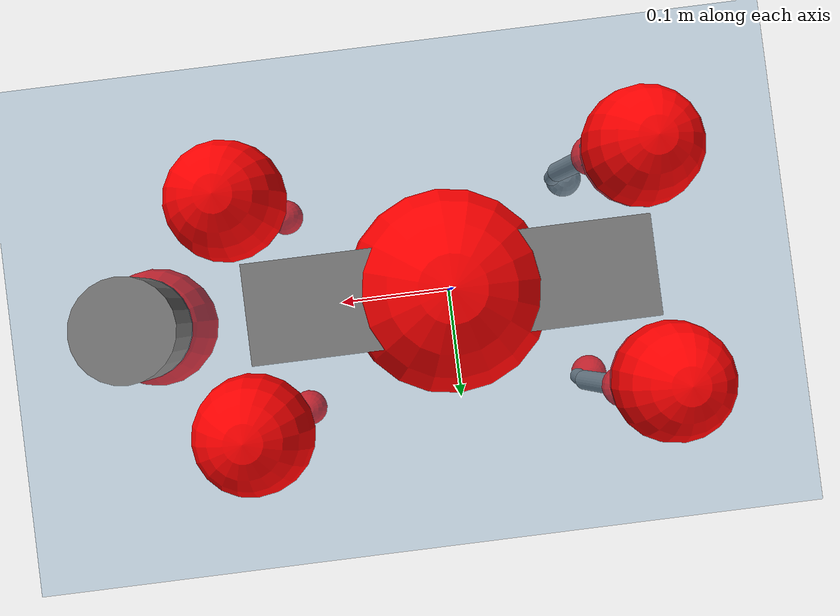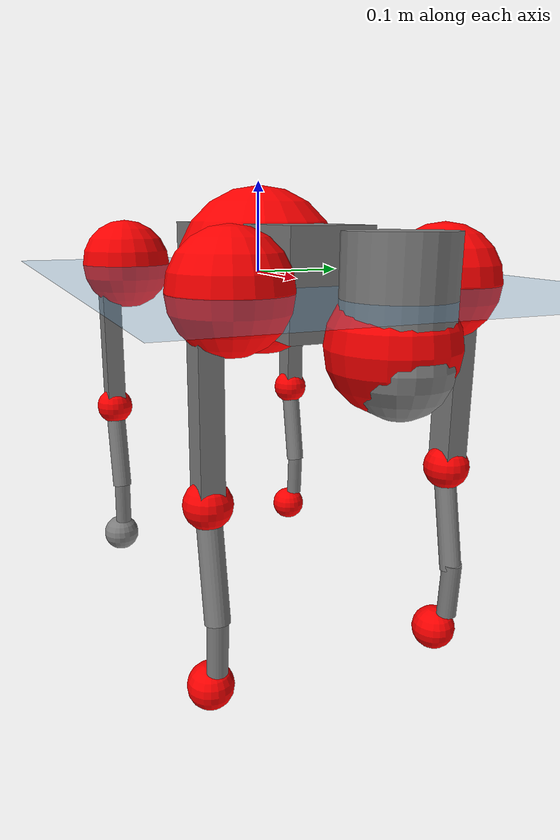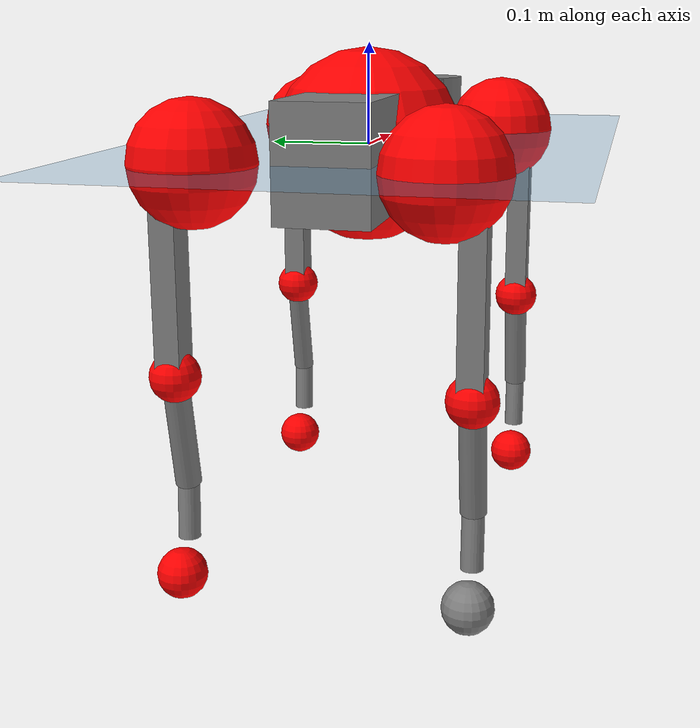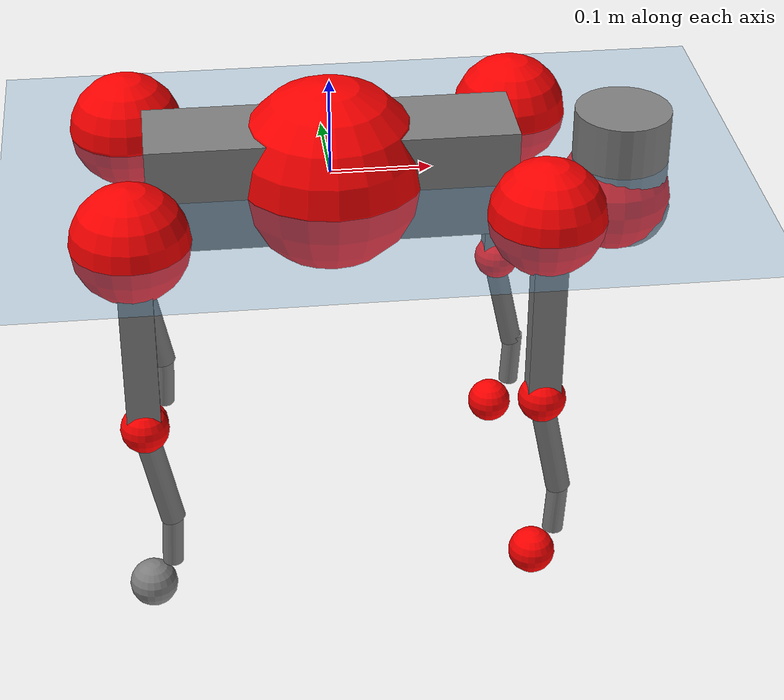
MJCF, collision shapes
<mujoco model="go2">
  <compiler angle="radian" assetdir="assets" balanceinertia="true" inertiafromgeom="false"/>

  <option timestep="0.005" density="1.2" viscosity="2e-05"/>

  <size nkey="1"/>

  <visual>
    <quality shadowsize="8192"/>
    <map shadowclip="0.5"/>
  </visual>

  <default>
    <default class="/">
      <geom contype="0" conaffinity="0" group="1" solref="-1000 -80"/>
      <site size="0.01 0.005 0.005" group="5"/>
      <general forcelimited="true" biastype="affine" gainprm="20" biasprm="0 -20 -0.5"/>
      <default class="go2">
        <joint armature="0.01" damping="0.01" frictionloss="0.2"/>
        <geom condim="1" margin="0.001"/>
        <default class="visual">
          <geom type="mesh" group="2"/>
        </default>
        <default class="collision">
          <geom group="3"/>
          <default class="foot">
            <geom size="0.022 0 0" condim="6" priority="1" friction="0.8 0.02 0.01" solimp="0.015 1 0.022"/>
          </default>
        </default>
        <default class="reward_collision_sphere">
          <geom group="5" rgba="1 0 0 1"/>
        </default>
      </default>
    </default>
  </default>

  <asset>
    <texture type="skybox" colorspace="auto" name="//unnamed_texture_0" builtin="gradient" rgb1="0.95 0.95 0.95" rgb2="0.95 0.95 0.95" width="100" height="600"/>
    <texture type="2d" colorspace="auto" name="texplane" builtin="checker" rgb1="0.345 0.575 0.748" rgb2="0.345 0.575 0.748" markrgb="1 1 1" width="512" height="512"/>
    <material name="MatPlane" class="/" texture="texplane" texuniform="true" texrepeat="2 2" specular="0.9"/>
    <material name="metal" class="/" rgba="0.9 0.95 0.95 1"/>
    <material name="black" class="/" rgba="0 0 0 1"/>
    <material name="white" class="/"/>
    <material name="gray" class="/" rgba="0.671705 0.692426 0.77427 1"/>
    <mesh name="base_0" class="/" file="base_0.obj"/>
    <mesh name="base_1" class="/" file="base_1.obj"/>
    <mesh name="base_2" class="/" file="base_2.obj"/>
    <mesh name="base_3" class="/" file="base_3.obj"/>
    <mesh name="base_4" class="/" file="base_4.obj"/>
    <mesh name="hip_0" class="/" file="hip_0.obj"/>
    <mesh name="hip_1" class="/" file="hip_1.obj"/>
    <mesh name="thigh_0" class="/" file="thigh_0.obj"/>
    <mesh name="thigh_1" class="/" file="thigh_1.obj"/>
    <mesh name="thigh_mirror_0" class="/" file="thigh_mirror_0.obj"/>
    <mesh name="thigh_mirror_1" class="/" file="thigh_mirror_1.obj"/>
    <mesh name="calf_0" class="/" file="calf_0.obj"/>
    <mesh name="calf_1" class="/" file="calf_1.obj"/>
    <mesh name="calf_mirror_0" class="/" file="calf_mirror_0.obj"/>
    <mesh name="calf_mirror_1" class="/" file="calf_mirror_1.obj"/>
    <mesh name="foot" class="/" file="foot.obj"/>
  </asset>

  <worldbody>
    <geom name="floor" class="/" size="100 100 0.125" type="plane" group="0" material="MatPlane"/>
    <light name="toplight_shadow" class="/" pos="0 0 5" dir="0.0990148 0.0990148 -0.990148" type="directional" ambient="0.04 0.04 0.04" diffuse="0.55 0.55 0.55" specular="0.12 0.12 0.12"/>
    <light name="toplight_fill" class="/" pos="0 0 5" dir="0.0990148 0.0990148 -0.990148" type="directional" castshadow="false" ambient="0.04 0.04 0.04" diffuse="0.3 0.3 0.3" specular="0.08 0.08 0.08"/>
    <body name="trunk" childclass="go2" pos="-0.000181211 0.000851697 -8.25812e-05" quat="1 -0.000420583 -2.43501e-05 -1.09938e-05">
      <inertial pos="0.0223051 -0.000805849 -0.00564442" quat="-0.000986847 0.714331 0.00251271 0.699802" mass="6.04706" diaginertia="0.115688 0.0756493 0.0153415"/>
      <joint name="//unnamed_joint_0" type="free" armature="0" damping="0" frictionloss="0"/>
      <geom name="//unnamed_geom_1" class="visual" material="black" mesh="base_0"/>
      <geom name="//unnamed_geom_2" class="visual" material="black" mesh="base_1"/>
      <geom name="//unnamed_geom_3" class="visual" material="black" mesh="base_2"/>
      <geom name="//unnamed_geom_4" class="visual" material="white" mesh="base_3"/>
      <geom name="//unnamed_geom_5" class="visual" material="gray" mesh="base_4"/>
      <geom name="trunk_1" class="collision" size="0.180804 0.0449366 0.054789" type="box"/>
      <geom name="trunk_2" class="collision" size="0.0480605 0.0432545" pos="0.290534 0 0.00913323" type="cylinder"/>
      <geom name="trunk_3" class="collision" size="0.0451769" pos="0.298689 0 -0.0547994"/>
      <geom name="//unnamed_geom_9" class="reward_collision_sphere" size="0.096121"/>
      <geom name="//unnamed_geom_10" class="reward_collision_sphere" size="0.0576726" pos="0.285437 0 -0.0410995"/>
      <site name="imu" pos="-0.0258362 -0.00156508 0.0370872" size="0.0096121"/>
      <camera name="track" pos="0 -1.90178 0" quat="0.707107 0.707107 0 0" mode="trackcom"/>
      <camera name="ego_camera" pos="0.318058 0 0.0410995" quat="-0.5 -0.5 0.5 0.5"/>
      <body name="FL_hip" pos="0.196693 0.0445225 0.000547897" quat="1 5.98059e-06 -5.57665e-05 -4.28914e-05">
        <inertial pos="-0.00537813 0.00249705 -0.000335978" quat="0.495991 0.496092 0.50457 0.503284" mass="0.60581" diaginertia="0.000983011 0.000470263 0.000308042"/>
        <joint name="FL_hip_joint" pos="0 0 0" axis="0.999999 0.000100316 -0.00120243" stiffness="0.00784505" range="-1.03094 1.03935" armature="0.00973631" damping="0.00533659" frictionloss="0.190719"/>
        <geom name="//unnamed_geom_11" class="visual" material="metal" mesh="hip_0"/>
        <geom name="//unnamed_geom_12" class="visual" material="gray" mesh="hip_1"/>
        <geom name="//unnamed_geom_13" class="collision" size="0.0442157 0.0192242" pos="0 0.0760711 0" quat="0.707107 0.707107 0 0" type="cylinder"/>
        <geom name="//unnamed_geom_14" class="reward_collision_sphere" size="0.0576726" pos="0 0.0665622 0"/>
        <body name="FL_thigh" pos="-0.00115615 0.0898394 0.000506604" quat="1 -1.95488e-05 6.40749e-05 0.00042609">
          <inertial pos="-0.00373644 -0.0200186 -0.0297687" quat="0.830002 0.0862775 -0.0189718 0.550721" mass="1.01436" diaginertia="0.00656064 0.00459189 0.000559728"/>
          <joint name="FL_thigh_joint" pos="0 0 0" axis="0.00124283 0.999995 -0.00290508" stiffness="0.00466021" range="-1.55145 3.48664" armature="0.0100145" damping="0.00690439" frictionloss="0.20087"/>
          <geom name="//unnamed_geom_15" class="visual" material="metal" mesh="thigh_0"/>
          <geom name="//unnamed_geom_16" class="visual" material="gray" mesh="thigh_1"/>
          <geom name="//unnamed_geom_17" class="collision" size="0.102369 0.0117748 0.0163406" pos="0 0 -0.0972689" quat="0.707107 0 0.707107 0" type="box"/>
          <body name="FL_calf" pos="-0.000607835 0.000308262 -0.194937" quat="1 6.72072e-05 -0.000105278 -8.26318e-05">
            <inertial pos="0.00646975 0.000371511 -0.128272" quat="0.710845 0.00225164 -0.0038309 0.703334" mass="0.216467" diaginertia="0.00166085 0.00115585 3.41726e-05"/>
            <joint name="FL_calf_joint" pos="0 0 0" axis="-0.00110777 0.999999 -0.000382432" range="-2.70568 -0.844401" armature="0.010069" damping="0.00452844" frictionloss="0.192097"/>
            <geom name="//unnamed_geom_18" class="visual" material="gray" mesh="calf_0"/>
            <geom name="//unnamed_geom_19" class="visual" material="black" mesh="calf_1"/>
            <geom name="FL_calf0" class="collision" size="0.0115345 0.0576726" pos="0.00815534 0 -0.0547994" quat="0.994493 0 -0.104807 0" type="cylinder"/>
            <geom name="//unnamed_geom_21" class="collision" size="0.0105733 0.0312393" pos="0.0203884 0 -0.135172" quat="0.999688 0 0.0249974 0" type="cylinder"/>
            <geom name="//unnamed_geom_22" class="visual" pos="0 0 -0.194538" quat="1 0 0 0" material="black" mesh="foot"/>
            <geom name="FL_foot" class="foot" size="0.0161388" pos="-0.00203884 0 -0.194538"/>
            <geom name="//unnamed_geom_24" class="reward_collision_sphere" size="0.0240303"/>
            <geom name="//unnamed_geom_25" class="reward_collision_sphere" size="0.0240303" pos="-0.00203884 0 -0.194538"/>
            <site name="FL_foot" class="foot" pos="-0.00203884 0 -0.194538" size="0.0096121"/>
          </body>
        </body>
      </body>
      <body name="FR_hip" pos="0.196877 -0.0425184 -0.00021504" quat="1 4.34059e-05 -6.58663e-06 6.09462e-05">
        <inertial pos="-0.0054559 -0.0019927 -0.000593979" quat="0.498003 0.505042 0.500083 0.496833" mass="0.605461" diaginertia="0.000984001 0.000463604 0.000304923"/>
        <joint name="FR_hip_joint" pos="0 0 0" axis="0.999966 0.00791114 0.00220965" range="-1.04555 1.04591" armature="0.0100071" damping="0.0166659" frictionloss="0.194488"/>
        <geom name="//unnamed_geom_26" class="visual" pos="0 3.27259e-10 1.40368e-08" quat="4.63268e-05 1 0 0" material="metal" mesh="hip_0"/>
        <geom name="//unnamed_geom_27" class="visual" pos="0 5.30527e-10 -3.47185e-08" quat="4.63268e-05 1 0 0" material="gray" mesh="hip_1"/>
        <geom name="//unnamed_geom_28" class="collision" size="0.0442157 0.0192242" pos="0 -0.0760711 0" quat="0.707107 0.707107 0 0" type="cylinder"/>
        <geom name="//unnamed_geom_29" class="reward_collision_sphere" size="0.0576726" pos="0 -0.0665622 0"/>
        <body name="FR_thigh" pos="-0.000389105 -0.0903685 -0.000293034" quat="1 -3.19313e-06 5.93163e-06 -8.77799e-06">
          <inertial pos="-0.00487763 0.0221808 -0.0293003" quat="0.552024 -0.0207956 0.0844476 0.82928" mass="1.02558" diaginertia="0.00661996 0.00454271 0.000558714"/>
          <joint name="FR_thigh_joint" pos="0 0 0" axis="0.000271623 -1 -0.000959389" stiffness="0.00489199" range="-3.48797 1.57003" armature="0.00956299" damping="0.010337" frictionloss="0.201109"/>
          <geom name="//unnamed_geom_30" class="visual" material="metal" mesh="thigh_mirror_0"/>
          <geom name="//unnamed_geom_31" class="visual" material="gray" mesh="thigh_mirror_1"/>
          <geom name="//unnamed_geom_32" class="collision" size="0.102369 0.0117748 0.0163406" pos="0 0 -0.0972689" quat="0.707107 0 0.707107 0" type="box"/>
          <body name="FR_calf" pos="-0.00041064 0.000159023 -0.194066" quat="1 -9.73069e-05 -1.58095e-05 0.000247306">
            <inertial pos="0.00729784 -0.000136654 -0.129393" quat="0.704877 -0.00397184 -0.000112325 0.709319" mass="0.216816" diaginertia="0.00166636 0.00113945 3.4538e-05"/>
            <joint name="FR_calf_joint" pos="0 0 0" axis="-0.00020792 -1 -4.76019e-05" range="0.839522 2.72726" armature="0.00941162" damping="0.0082078" frictionloss="0.194923"/>
            <geom name="//unnamed_geom_33" class="visual" material="gray" mesh="calf_mirror_0"/>
            <geom name="//unnamed_geom_34" class="visual" material="black" mesh="calf_mirror_1"/>
            <geom name="FR_calf0" class="collision" size="0.0124957 0.0576726" pos="0.0101942 0 -0.0547994" quat="0.995004 0 -0.0998334 0" type="cylinder"/>
            <geom name="//unnamed_geom_36" class="collision" size="0.0105733 0.0312393" pos="0.0203884 0 -0.135172" quat="0.999688 0 0.0249974 0" type="cylinder"/>
            <geom name="//unnamed_geom_37" class="visual" pos="0 0 -0.194538" quat="1 0 0 0" material="black" mesh="foot"/>
            <geom name="FR_foot" class="foot" size="0.0211028" pos="-0.00203884 0 -0.194538"/>
            <geom name="//unnamed_geom_39" class="reward_collision_sphere" size="0.0240303"/>
            <geom name="//unnamed_geom_40" class="reward_collision_sphere" size="0.0240303" pos="-0.00203884 0 -0.194538"/>
            <site name="FR_foot" class="foot" pos="-0.00203884 0 -0.194538" size="0.0096121"/>
          </body>
        </body>
      </body>
      <body name="RL_hip" pos="-0.197122 0.0433757 0.00153055" quat="1 0.000296998 0.000264302 3.48309e-05">
        <inertial pos="0.00597361 0.00160464 -0.000984704" quat="0.50414 0.499561 0.496114 0.500152" mass="0.597292" diaginertia="0.000971688 0.000470118 0.000302982"/>
        <joint name="RL_hip_joint" pos="0 0 0" axis="-0.999851 -0.00132066 0.0172031" stiffness="0.00271349" range="-1.04967 1.05514" armature="0.00937705" damping="0.0146991" frictionloss="0.186851"/>
        <geom name="//unnamed_geom_41" class="visual" pos="-9.24255e-10 0 -1.81175e-07" quat="4.63268e-05 0 1 0" material="metal" mesh="hip_0"/>
        <geom name="//unnamed_geom_42" class="visual" pos="-1.49833e-09 0 -1.60677e-07" quat="4.63268e-05 0 1 0" material="gray" mesh="hip_1"/>
        <geom name="//unnamed_geom_43" class="collision" size="0.0442157 0.0192242" pos="0 0.0760711 0" quat="0.707107 0.707107 0 0" type="cylinder"/>
        <geom name="//unnamed_geom_44" class="reward_collision_sphere" size="0.0576726" pos="0 0.0665622 0"/>
        <body name="RL_thigh" pos="-0.000113369 0.0914688 0.000189425" quat="1 8.0148e-05 -0.00014077 -4.97336e-05">
          <inertial pos="-0.00371835 -0.0196972 -0.0303422" quat="0.829898 0.0864277 -0.0178488 0.550891" mass="1.01321" diaginertia="0.00661985 0.00448769 0.000558698"/>
          <joint name="RL_thigh_joint" pos="0 0 0" axis="-0.000815169 0.999996 -0.00279959" stiffness="0.000525428" range="-0.526781 4.54147" armature="0.00920047" damping="0.00459443" frictionloss="0.200953"/>
          <geom name="//unnamed_geom_45" class="visual" material="metal" mesh="thigh_0"/>
          <geom name="//unnamed_geom_46" class="visual" material="gray" mesh="thigh_1"/>
          <geom name="//unnamed_geom_47" class="collision" size="0.102369 0.0117748 0.0163406" pos="0 0 -0.0972689" quat="0.707107 0 0.707107 0" type="box"/>
          <body name="RL_calf" pos="0.000500101 -0.00065421 -0.194945" quat="1 9.67192e-05 -0.000294375 2.93833e-05">
            <inertial pos="0.00622825 -0.000660546 -0.128918" quat="0.711076 0.000184319 -0.00470652 0.7031" mass="0.215196" diaginertia="0.00166457 0.00115367 3.41716e-05"/>
            <joint name="RL_calf_joint" pos="0 0 0" axis="0.00156064 0.999981 0.00588906" stiffness="0.00157347" range="-2.70632 -0.832333" armature="0.0100644" damping="0" frictionloss="0.201008"/>
            <geom name="//unnamed_geom_48" class="visual" material="gray" mesh="calf_0"/>
            <geom name="//unnamed_geom_49" class="visual" material="black" mesh="calf_1"/>
            <geom name="RL_calf0" class="collision" size="0.0124957 0.0576726" pos="0.0101942 0 -0.0547994" quat="0.995004 0 -0.0998334 0" type="cylinder"/>
            <geom name="//unnamed_geom_51" class="collision" size="0.0105733 0.0312393" pos="0.0203884 0 -0.135172" quat="0.999688 0 0.0249974 0" type="cylinder"/>
            <geom name="//unnamed_geom_52" class="visual" pos="0 0 -0.194538" quat="1 0 0 0" material="black" mesh="foot"/>
            <geom name="RL_foot" class="foot" size="0.0190141" pos="-0.00203884 0 -0.194538"/>
            <geom name="//unnamed_geom_54" class="reward_collision_sphere" size="0.0240303"/>
            <geom name="//unnamed_geom_55" class="reward_collision_sphere" size="0.0240303" pos="-0.00203884 0 -0.194538"/>
            <site name="RL_foot" class="foot" pos="-0.00203884 0 -0.194538" size="0.0096121"/>
          </body>
        </body>
      </body>
      <body name="RR_hip" pos="-0.197497 -0.0454716 -0.00102507" quat="1 -0.000334032 0.00021952 0.000415603">
        <inertial pos="0.00512651 -0.00203689 0.000260767" quat="0.498837 0.496516 0.498341 0.50625" mass="0.607401" diaginertia="0.000983221 0.000468526 0.000312625"/>
        <joint name="RR_hip_joint" pos="0 0 0" axis="-0.999999 -0.000314408 0.0011499" range="-1.05568 1.03061" armature="0.00977065" damping="0.00761614" frictionloss="0.183454"/>
        <geom name="//unnamed_geom_56" class="visual" pos="9.21883e-10 3.27259e-10 -1.95212e-07" quat="2.14617e-09 4.63268e-05 4.63268e-05 -1" material="metal" mesh="hip_0"/>
        <geom name="//unnamed_geom_57" class="visual" pos="1.5042e-09 5.30527e-10 -1.25958e-07" quat="2.14617e-09 4.63268e-05 4.63268e-05 -1" material="gray" mesh="hip_1"/>
        <geom name="//unnamed_geom_58" class="collision" size="0.0442157 0.0192242" pos="0 -0.0760711 0" quat="0.707107 0.707107 0 0" type="cylinder"/>
        <geom name="//unnamed_geom_59" class="reward_collision_sphere" size="0.0576726" pos="0 -0.0665622 0"/>
        <body name="RR_thigh" pos="0.00135521 -0.0919326 -0.000426805" quat="1 0.000210091 -1.50039e-05 -0.000325228">
          <inertial pos="-0.00381867 0.0218793 -0.0298405" quat="0.55119 -0.0218424 0.0847466 0.829777" mass="1.03072" diaginertia="0.00658501 0.00455656 0.000567818"/>
          <joint name="RR_thigh_joint" pos="0 0 0" axis="-0.00617541 -0.999972 -0.00424836" range="-4.54445 0.544975" armature="0.00923148" damping="0.00982765" frictionloss="0.194841"/>
          <geom name="//unnamed_geom_60" class="visual" material="metal" mesh="thigh_mirror_0"/>
          <geom name="//unnamed_geom_61" class="visual" material="gray" mesh="thigh_mirror_1"/>
          <geom name="//unnamed_geom_62" class="collision" size="0.102369 0.0117748 0.0163406" pos="0 0 -0.0972689" quat="0.707107 0 0.707107 0" type="box"/>
          <body name="RR_calf" pos="0.000240599 -0.000607536 -0.194859" quat="1 -6.62217e-05 0.000216776 -1.06816e-05">
            <inertial pos="0.00711886 0.000708146 -0.129017" quat="0.703285 -0.00413469 0.00183487 0.710894" mass="0.212266" diaginertia="0.00164656 0.00112793 3.38413e-05"/>
            <joint name="RR_calf_joint" pos="0 0 0" axis="0.00544331 -0.999972 -0.00507709" stiffness="0.00158234" range="0.839922 2.71182" armature="0.00955964" damping="0.00794358" frictionloss="0.183556"/>
            <geom name="//unnamed_geom_63" class="visual" material="gray" mesh="calf_mirror_0"/>
            <geom name="//unnamed_geom_64" class="visual" material="black" mesh="calf_mirror_1"/>
            <geom name="RR_calf0" class="collision" size="0.0124957 0.0576726" pos="0.0101942 0 -0.0547994" quat="0.995004 0 -0.0998334 0" type="cylinder"/>
            <geom name="//unnamed_geom_66" class="collision" size="0.0105733 0.0312393" pos="0.0203884 0 -0.135172" quat="0.999688 0 0.0249974 0" type="cylinder"/>
            <geom name="//unnamed_geom_67" class="visual" pos="0 0 -0.194538" quat="1 0 0 0" material="black" mesh="foot"/>
            <geom name="RR_foot" class="foot" size="0.0243375" pos="-0.00203884 0 -0.194538"/>
            <geom name="//unnamed_geom_69" class="reward_collision_sphere" size="0.0240303"/>
            <geom name="//unnamed_geom_70" class="reward_collision_sphere" size="0.0240303" pos="-0.00203884 0 -0.194538"/>
            <site name="RR_foot" class="foot" pos="-0.00203884 0 -0.194538" size="0.0096121"/>
          </body>
        </body>
      </body>
    </body>
  </worldbody>

  <contact>
    <pair class="/" geom1="floor" geom2="FL_foot" name="//unnamed_contact_0"/>
    <pair class="/" geom1="floor" geom2="FR_foot" name="//unnamed_contact_1"/>
    <pair class="/" geom1="floor" geom2="RL_foot" name="//unnamed_contact_2"/>
    <pair class="/" geom1="floor" geom2="RR_foot" name="//unnamed_contact_3"/>
  </contact>

  <actuator>
    <general name="FL_hip" class="/" joint="FL_hip_joint" forcerange="-22.0805 22.0805" gainprm="19.3024" biasprm="0 -19.3024 -0.476933"/>
    <general name="FL_thigh" class="/" joint="FL_thigh_joint" forcerange="-22.7769 22.7769" gainprm="19.3024" biasprm="0 -19.3024 -0.476933"/>
    <general name="FL_calf" class="/" joint="FL_calf_joint" forcerange="-43.0077 43.0077" gainprm="19.3024" biasprm="0 -19.3024 -0.476933"/>
    <general name="FR_hip" class="/" joint="FR_hip_joint" forcerange="-23.4127 23.4127" gainprm="19.3024" biasprm="0 -19.3024 -0.476933"/>
    <general name="FR_thigh" class="/" joint="FR_thigh_joint" forcerange="-22.9067 22.9067" gainprm="19.3024" biasprm="0 -19.3024 -0.476933"/>
    <general name="FR_calf" class="/" joint="FR_calf_joint" forcerange="-44.5286 44.5286" gainprm="19.3024" biasprm="0 -19.3024 -0.476933"/>
    <general name="RL_hip" class="/" joint="RL_hip_joint" forcerange="-22.8605 22.8605" gainprm="19.3024" biasprm="0 -19.3024 -0.476933"/>
    <general name="RL_thigh" class="/" joint="RL_thigh_joint" forcerange="-22.8049 22.8049" gainprm="19.3024" biasprm="0 -19.3024 -0.476933"/>
    <general name="RL_calf" class="/" joint="RL_calf_joint" forcerange="-43.6277 43.6277" gainprm="19.3024" biasprm="0 -19.3024 -0.476933"/>
    <general name="RR_hip" class="/" joint="RR_hip_joint" forcerange="-23.4703 23.4703" gainprm="19.3024" biasprm="0 -19.3024 -0.476933"/>
    <general name="RR_thigh" class="/" joint="RR_thigh_joint" forcerange="-22.5518 22.5518" gainprm="19.3024" biasprm="0 -19.3024 -0.476933"/>
    <general name="RR_calf" class="/" joint="RR_calf_joint" forcerange="-44.2442 44.2442" gainprm="19.3024" biasprm="0 -19.3024 -0.476933"/>
  </actuator>

  <sensor>
    <gyro site="imu" name="imu_angular_velocity"/>
    <velocimeter site="imu" name="imu_linear_velocity"/>
    <framelinvel objtype="site" objname="FL_foot" name="FL_foot_global_linear_velocity"/>
    <framelinvel objtype="site" objname="FR_foot" name="FR_foot_global_linear_velocity"/>
    <framelinvel objtype="site" objname="RL_foot" name="RL_foot_global_linear_velocity"/>
    <framelinvel objtype="site" objname="RR_foot" name="RR_foot_global_linear_velocity"/>
  </sensor>

  <keyframe>
    <key name="home" qpos="0 0 0.325 1 0 0 0 0.1 0.8 -1.5 -0.1 -0.8 1.5 -0.1 0.8 -1.5 0.1 -0.8 1.5"/>
  </keyframe>
</mujoco>
